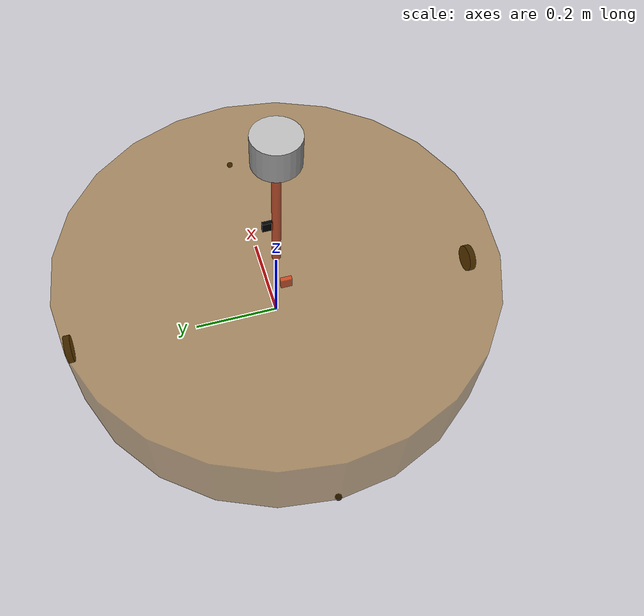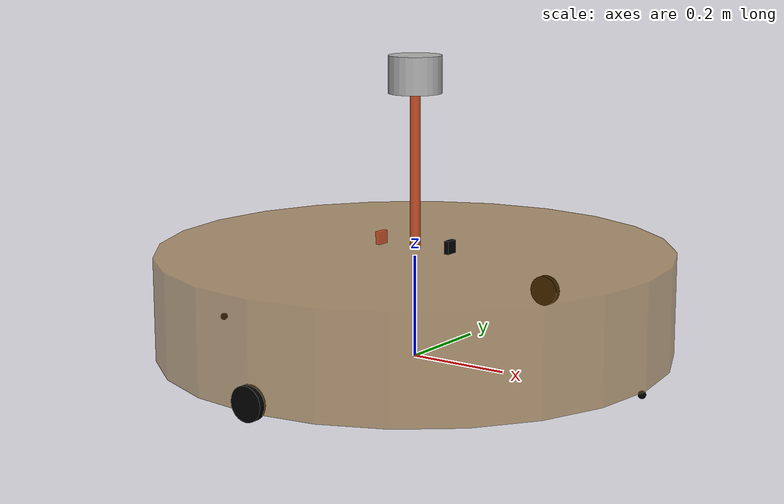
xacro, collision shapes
<!-- 组合小车底盘与传感器 -->
<robot name="robot_car" xmlns:xacro="http://wiki.ros.org/xacro">
    <!-- 属性封装 -->
    <xacro:arg name="gpu" default="true"/>
    <xacro:property name="gpu" value="$(arg gpu)" />

    <!-- 加载转动惯量描述 -->
    <xacro:include filename="$(find robot_description)/urdf/my_head.xacro" />

    <!-- 加载底盘描述 -->
    <xacro:include filename="$(find robot_description)/urdf/my_base.xacro" />
    <xacro:include filename="$(find robot_description)/urdf/move.xacro" />

    <!-- 更新结构信息，以laser_support + velodyne 为构建，不需要自己写雷达仿真的xacro文件 -->

    <!-- VLP16 激光雷达 -->
    <xacro:include filename="$(find robot_description)/urdf/laser_support.xacro" />
    <xacro:include filename="$(find velodyne_description)/urdf/VLP-16.urdf.xacro"/>
    <xacro:VLP-16 parent="support" name="velodyne" topic="/velodyne_points" hz="10" samples="440" gpu="${gpu}">
          <origin xyz="0 0 ${support_length/2}" rpy="0 0 0" />
    </xacro:VLP-16>

    <!-- IMU 模块 -->
    <xacro:include filename="$(find robot_description)/urdf/my_imu.xacro"/>
    <!-- 实例化 -->
    <xacro:imu prefix="imu"/>

    <!-- 摄像头模块 -->
    <xacro:include filename="$(find robot_description)/urdf/my_camera.xacro" />

</robot>

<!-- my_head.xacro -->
<robot name="inertia" xmlns:xacro="http://wiki.ros.org/xacro">
    <!-- Macro for inertia matrix -->
    <xacro:macro name="sphere_inertial_matrix" params="m r">
        <inertial>
            <mass value="${m}" />
            <inertia ixx="${2*m*r*r/5}" ixy="0" ixz="0"
                iyy="${2*m*r*r/5}" iyz="0"
                izz="${2*m*r*r/5}" />
        </inertial>
    </xacro:macro>

    <xacro:macro name="cylinder_inertial_matrix" params="m r h">
        <inertial>
            <mass value="${m}" />
            <inertia ixx="${m*(3*r*r+h*h)/12}" ixy = "0" ixz = "0"
                iyy="${m*(3*r*r+h*h)/12}" iyz = "0"
                izz="${m*r*r/2}" />
        </inertial>
    </xacro:macro>

    <xacro:macro name="Box_inertial_matrix" params="m l w h">
       <inertial>
               <mass value="${m}" />
               <inertia ixx="${m*(h*h + l*l)/12}" ixy = "0" ixz = "0"
                   iyy="${m*(w*w + l*l)/12}" iyz= "0"
                   izz="${m*(w*w + h*h)/12}" />
       </inertial>
   </xacro:macro>
</robot>

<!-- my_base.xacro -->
<!--
    使用 xacro 优化 URDF 版的小车底盘实现：

    实现思路:
    1.将一些常量、变量封装为 xacro:property
      比如:PI 值、小车底盘半径、离地间距、车轮半径、宽度 ....
    2.使用 宏 封装驱动轮以及支撑轮实现，调用相关宏生成驱动轮与支撑轮

-->
<!-- 根标签，必须声明 xmlns:xacro -->
<robot name="my_base" xmlns:xacro="http://www.ros.org/wiki/xacro">
    <!-- 封装变量、常量 -->
    <!-- PI 值设置精度需要高一些，否则后续车轮翻转量计算时，可能会出现肉眼不能察觉的车轮倾斜，从而导致模型抖动 -->
    <xacro:property name="PI" value="3.1415926535897932384626" />
    <!-- 宏:黑色设置 -->
    <material name="black">
        <color rgba="0.0 0.0 0.0 1.0" />
    </material>
    <!-- 底盘属性 -->
    <xacro:property name="base_footprint_radius" value="0.001" /> <!-- base_footprint 半径  -->
    <xacro:property name="base_link_radius" value="0.5" /> <!-- base_link 半径 -->
    <xacro:property name="base_link_length" value="0.2" /> <!-- base_link 长 -->
    <xacro:property name="earth_space" value="0.015" /> <!-- 离地间距 -->
    <xacro:property name="base_link_m" value="10" /> <!-- 质量  -->

    <!-- 底盘 -->
    <link name="base_footprint">
      <visual>
        <geometry>
          <sphere radius="${base_footprint_radius}" />
        </geometry>
      </visual>
    </link>

    <link name="base_link">
      <visual>
        <geometry>
          <cylinder radius="${base_link_radius}" length="${base_link_length}" />
        </geometry>
        <origin xyz="0 0 0" rpy="0 0 0" />
        <material name="yellow">
          <color rgba="0.5 0.3 0.0 0.5" />
        </material>
      </visual>
      <collision>
        <geometry>
          <cylinder radius="${base_link_radius}" length="${base_link_length}" />
        </geometry>
        <origin xyz="0 0 0" rpy="0 0 0" />
      </collision>
      <xacro:cylinder_inertial_matrix m="${base_link_m}" r="${base_link_radius}" h="${base_link_length}" />

    </link>

    <joint name="base_link2base_footprint" type="fixed">
      <parent link="base_footprint" />
      <child link="base_link" />
      <origin xyz="0 0 ${earth_space + base_link_length / 2 }" />
    </joint>
    <gazebo reference="base_link">
        <material>Gazebo/Yellow</material>
    </gazebo>

    <!-- 驱动轮 -->
    <!-- 驱动轮属性 -->
    <xacro:property name="wheel_radius" value="0.0325" /><!-- 半径 -->
    <xacro:property name="wheel_length" value="0.015" /><!-- 宽度 -->
    <xacro:property name="wheel_m" value="0.5" /> <!-- 质量  -->

    <!-- 驱动轮宏实现 -->
    <xacro:macro name="add_wheels" params="name flag">
      <link name="${name}_wheel">
        <visual>
          <geometry>
            <cylinder radius="${wheel_radius}" length="${wheel_length}" />
          </geometry>
          <origin xyz="0.0 0.0 0.0" rpy="${PI / 2} 0.0 0.0" />
          <material name="black" />
        </visual>
        <collision>
          <geometry>
            <cylinder radius="${wheel_radius}" length="${wheel_length}" />
          </geometry>
          <origin xyz="0.0 0.0 0.0" rpy="${PI / 2} 0.0 0.0" />
        </collision>
        <xacro:cylinder_inertial_matrix m="${wheel_m}" r="${wheel_radius}" h="${wheel_length}" />

      </link>

      <joint name="${name}_wheel2base_link" type="continuous">
        <parent link="base_link" />
        <child link="${name}_wheel" />
        <origin xyz="0 ${flag * base_link_radius} ${-(earth_space + base_link_length / 2 - wheel_radius) }" />
        <axis xyz="0 1 0" />
      </joint>

      <gazebo reference="${name}_wheel">
        <material>Gazebo/Red</material>
      </gazebo>

    </xacro:macro>
    <xacro:add_wheels name="left" flag="1" />
    <xacro:add_wheels name="right" flag="-1" />
    <!-- 支撑轮 -->
    <!-- 支撑轮属性 -->
    <xacro:property name="support_wheel_radius" value="0.0075" /> <!-- 支撑轮半径 -->
    <xacro:property name="support_wheel_m" value="0.5" /> <!-- 质量  -->

    <!-- 支撑轮宏 -->
    <xacro:macro name="add_support_wheel" params="name flag" >
      <link name="${name}_wheel">
        <visual>
            <geometry>
                <sphere radius="${support_wheel_radius}" />
            </geometry>
            <origin xyz="0 0 0" rpy="0 0 0" />
            <material name="black" />
        </visual>
        <collision>
            <geometry>
                <sphere radius="${support_wheel_radius}" />
            </geometry>
            <origin xyz="0 0 0" rpy="0 0 0" />
        </collision>
        <xacro:sphere_inertial_matrix m="${support_wheel_m}" r="${support_wheel_radius}" />
      </link>

      <joint name="${name}_wheel2base_link" type="continuous">
          <parent link="base_link" />
          <child link="${name}_wheel" />
          <origin xyz="${flag * (base_link_radius - support_wheel_radius)} 0 ${-(base_link_length / 2 + earth_space / 2)}" />
          <axis xyz="1 1 1" />
      </joint>
      <gazebo reference="${name}_wheel">
        <material>Gazebo/Red</material>
      </gazebo>
    </xacro:macro>

    <xacro:add_support_wheel name="front" flag="1" />
    <xacro:add_support_wheel name="back" flag="-1" />

</robot>

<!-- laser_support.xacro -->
<robot name="laser_support" xmlns:xacro="http://wiki.ros.org/xacro">
    <!-- 雷达支架 -->
    <xacro:property name="support_length" value="0.30" /> <!-- 支架长度 -->
    <xacro:property name="support_radius" value="0.01" /> <!-- 支架半径 -->
    <xacro:property name="support_x_size" value="0.0" /> <!-- 支架安装的x坐标 -->
    <xacro:property name="support_y_size" value="0.0" /> <!-- 支架安装的y坐标 -->
    <xacro:property name="support_z_size" value="${base_link_length / 2 + support_length / 2}" /> <!-- 支架安装的z坐标:底盘高度 / 2 + 支架高度 / 2  -->

    <xacro:property name="support_m" value="0.02" /> <!-- 支架质量 -->

    <link name="support">
        <visual>
            <geometry>
                <cylinder radius="${support_radius}" length="${support_length}" />
            </geometry>
            <origin xyz="0.0 0.0 0.0" rpy="0.0 0.0 0.0" />
            <material name="red">
                <color rgba="0.8 0.2 0.0 0.8" />
            </material>
        </visual>
        <collision>
            <geometry>
                <cylinder radius="${support_radius}" length="${support_length}" />
            </geometry>
            <origin xyz="0.0 0.0 0.0" rpy="0.0 0.0 0.0" />
        </collision>
        <xacro:cylinder_inertial_matrix m="${support_m}" r="${support_radius}" h="${support_length}" />
    </link>

    <joint name="support2base_link" type="fixed">
        <parent link="base_link" />
        <child link="support" />
        <origin xyz="${support_x_size} ${support_y_size} ${support_z_size}" />
    </joint>
    <gazebo reference="support">
        <material>Gazebo/White</material>
    </gazebo>
</robot>

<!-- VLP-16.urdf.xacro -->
<robot xmlns:xacro="http://www.ros.org/wiki/xacro" name="VLP-16">
  <xacro:property name="M_PI" value="3.1415926535897931" />
  <xacro:macro name="VLP-16" params="*origin is_sim:=true parent:=base_link name:=velodyne tf_prefix:='' topic:=/velodyne_points organize_cloud:=false hz:=10 lasers:=16 samples:=1875 collision_range:=0.3 min_range:=0.0 max_range:=100.0 noise:=0.008 min_angle:=-${M_PI} max_angle:=${M_PI} gpu:=false">

    <joint name="${name}_base_mount_joint" type="fixed">
      <xacro:insert_block name="origin" />
      <parent link="${parent}"/>
      <child link="${name}_base_link"/>
    </joint>

    <link name="${name}_base_link">
      <inertial>
        <mass value="0.83"/>
        <origin xyz="0 0 0.03585"/>
        <inertia ixx="${(0.83 * (3.0*0.0516*0.0516 + 0.0717*0.0717)) / 12.0}" ixy="0" ixz="0"
          iyy="${(0.83 * (3.0*0.0516*0.0516 + 0.0717*0.0717)) / 12.0}" iyz="0"
          izz="${0.5 * 0.83 * (0.0516*0.0516)}"/>
      </inertial>
      <visual>
        <geometry>
          <mesh filename="package://velodyne_description/meshes/VLP16_base_1.dae" />
        </geometry>
      </visual>
      <visual>
        <geometry>
          <mesh filename="package://velodyne_description/meshes/VLP16_base_2.dae" />
        </geometry>
      </visual>
      <collision>
        <origin rpy="0 0 0" xyz="0 0 0.03585"/>
        <geometry>
          <cylinder radius="0.0516" length="0.0717"/>
        </geometry>
      </collision>
    </link>

    <joint name="${name}_base_scan_joint" type="fixed" >
      <origin xyz="0 0 0.0377" rpy="0 0 0" />
      <parent link="${name}_base_link" />
      <child link="${name}"/>
    </joint>

    <link name="${name}">
      <inertial>
        <mass value="0.01"/>
        <origin xyz="0 0 0"/>
        <inertia ixx="1e-7" ixy="0" ixz="0" iyy="1e-7" iyz="0" izz="1e-7"/>
      </inertial>
      <visual>
        <origin xyz="0 0 -0.0377" />
        <geometry>
          <mesh filename="package://velodyne_description/meshes/VLP16_scan.dae" />
        </geometry>
      </visual>
      <collision>
        <geometry>
          <sphere radius="0"/>
        </geometry>
      </collision>
    </link>

    <!-- Gazebo requires the velodyne_gazebo_plugins package -->
    <xacro:if value="${is_sim}">
        <gazebo reference="${name}">
            <xacro:if value="${gpu}">
                <sensor type="gpu_ray" name="${name}-VLP16">
                <pose>0 0 0 0 0 0</pose>
                <visualize>false</visualize>
                <update_rate>${hz}</update_rate>
                <ray>
                    <scan>
                    <horizontal>
                        <samples>${samples}</samples>
                        <resolution>1</resolution>
                        <min_angle>${min_angle}</min_angle>
                        <max_angle>${max_angle}</max_angle>
                    </horizontal>
                    <vertical>
                        <samples>${lasers}</samples>
                        <resolution>1</resolution>
                        <min_angle>-${15.0*M_PI/180.0}</min_angle>
                        <max_angle> ${15.0*M_PI/180.0}</max_angle>
                    </vertical>
                    </scan>
                    <range>
                    <min>${collision_range}</min>
                    <max>${max_range+1}</max>
                    <resolution>0.001</resolution>
                    </range>
                    <noise>
                    <type>gaussian</type>
                    <mean>0.0</mean>
                    <stddev>0.0</stddev>
                    </noise>
                </ray>
                <plugin name="gazebo_ros_laser_controller" filename="libgazebo_ros_velodyne_laser.so">
                    <ros>
                    <namespace>/${name}</namespace>
                    <remapping>~/out:=${topic}</remapping>
                    </ros>
                    <tf_prefix>${tf_prefix}</tf_prefix>
                    <frame_name>${name}</frame_name>
                    <organize_cloud>${organize_cloud}</organize_cloud>
                    <min_range>${min_range}</min_range>
                    <max_range>${max_range}</max_range>
                    <gaussian_noise>${noise}</gaussian_noise>
                </plugin>
                </sensor>
            </xacro:if>
            <xacro:unless value="${gpu}">
                <sensor type="ray" name="${name}-VLP16">
                <pose>0 0 0 0 0 0</pose>
                <visualize>false</visualize>
                <update_rate>${hz}</update_rate>
                <ray>
                    <scan>
                    <horizontal>
                        <samples>${samples}</samples>
                        <resolution>1</resolution>
                        <min_angle>${min_angle}</min_angle>
                        <max_angle>${max_angle}</max_angle>
                    </horizontal>
                    <vertical>
                        <samples>${lasers}</samples>
                        <resolution>1</resolution>
                        <min_angle>-${15.0*M_PI/180.0}</min_angle>
                        <max_angle> ${15.0*M_PI/180.0}</max_angle>
                    </vertical>
                    </scan>
                    <range>
                    <min>${collision_range}</min>
                    <max>${max_range+1}</max>
                    <resolution>0.001</resolution>
                    </range>
                    <noise>
                    <type>gaussian</type>
                    <mean>0.0</mean>
                    <stddev>0.0</stddev>
                    </noise>
                </ray>
                <plugin name="gazebo_ros_laser_controller" filename="libgazebo_ros_velodyne_laser.so">
                    <ros>
                    <namespace>/${name}</namespace>
                    <remapping>~/out:=${topic}</remapping>
                    </ros>
                    <tf_prefix>${tf_prefix}</tf_prefix>
                    <frame_name>${name}</frame_name>
                    <organize_cloud>${organize_cloud}</organize_cloud>
                    <min_range>${min_range}</min_range>
                    <max_range>${max_range}</max_range>
                    <gaussian_noise>${noise}</gaussian_noise>
                </plugin>
                </sensor>
            </xacro:unless>
        </gazebo>
    </xacro:if>

  </xacro:macro>
</robot>

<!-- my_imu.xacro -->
<robot xmlns:xacro="http://www.ros.org/wiki/xacro" name="imu">

    <!-- IMU 属性 -->
    <xacro:property name="imu_length"   value="0.01" /> <!-- IMU长度(x) -->
    <xacro:property name="imu_width"    value="0.025" /> <!-- IMU宽度(y) -->
    <xacro:property name="imu_height"   value="0.025" /> <!-- IMU高度(z) -->
    <xacro:property name="imu_x"        value="-0.08" />
    <xacro:property name="imu_y"        value="0.0" />
    <xacro:property name="imu_z"        value="${base_link_length / 2 + imu_height / 2}" />

    <xacro:property name="imu_m" value="0.01" /> <!-- IMU质量 -->

    <!-- 默认惯性参数 -->
    <xacro:macro name="default_inertial" params="mass">
        <inertial>
            <mass value="${mass}" />
            <inertia ixx="1.0" ixy="0.0" ixz="0.0" iyy="1.0" iyz="0.0" izz="1.0" />
        </inertial>
    </xacro:macro>

    <!-- IMU 传感器宏 -->
    <xacro:macro name="imu" params="prefix:=imu">

        <!-- IMU 链接 -->
        <link name="imu_link">
            <visual>
                <geometry>
                    <box size="${imu_length} ${imu_width} ${imu_height}"/>
                </geometry>
                <origin rpy="0 0 0" xyz="0 0 0" />
                <material name="red"/>
            </visual>
            <collision>
                <geometry>
                    <box size="${imu_length} ${imu_width} ${imu_height}"/>
                </geometry>
                <origin rpy="0 0 0" xyz="0 0 0" />
            </collision>
            <xacro:Box_inertial_matrix m="${imu_m}" l="${imu_length}" w="${imu_width}" h="${imu_height}" />
        </link>

        <!-- 关节连接 imu_link 和 base_link -->
        <joint name="imu_to_base" type="fixed">
            <parent link="base_link"/>
            <child link="imu_link"/>
            <origin rpy="0 0 0" xyz="${imu_x} ${imu_y} ${imu_z}"/>
        </joint>

        <!-- Gazebo 配置 -->
        <gazebo reference="${prefix}_link">
            <gravity>true</gravity>
            <sensor name="imu_sensor" type="imu">
                <always_on>true</always_on>
                <update_rate>100</update_rate>
                <visualize>true</visualize>
                <topic>__default_topic__</topic>
                <plugin filename="libgazebo_ros_imu_sensor.so" name="imu_plugin">
                    <topicName>imu</topicName>
                    <bodyName>imu_link</bodyName>
                    <updateRateHZ>100.0</updateRateHZ>
                    <gaussianNoise>0.0</gaussianNoise>
                    <xyzOffset>0 0 0</xyzOffset>
                    <rpyOffset>0 0 0</rpyOffset>
                    <frameName>imu_link</frameName>
                </plugin>
                <pose>0 0 0 0 0 0</pose>
            </sensor>
        </gazebo>

    </xacro:macro>

</robot>

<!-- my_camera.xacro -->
<robot name="my_camera" xmlns:xacro="http://www.ros.org/wiki/xacro">
    <!-- 摄像头属性 -->
    <xacro:property name="camera_length"    value="0.01" /> <!-- 摄像头长度(x) -->
    <xacro:property name="camera_width"     value="0.025" /> <!-- 摄像头宽度(y) -->
    <xacro:property name="camera_height"    value="0.025" /> <!-- 摄像头高度(z) -->
    <xacro:property name="camera_x"         value="0.08" /> <!-- 摄像头安装的x坐标 -->
    <xacro:property name="camera_y"         value="0.0" /> <!-- 摄像头安装的y坐标 -->
    <xacro:property name="camera_z"         value="${base_link_length / 2 + camera_height / 2}" /> <!-- 摄像头安装的z坐标:底盘高度 / 2 + 摄像头高度 / 2  -->

    <xacro:property name="camera_m" value="0.01" /> <!-- 摄像头质量 -->

    <!-- 摄像头关节以及link -->
    <link name="camera">
        <visual>
            <geometry>
                <box size="${camera_length} ${camera_width} ${camera_height}" />
            </geometry>
            <origin xyz="0.0 0.0 0.0" rpy="0.0 0.0 0.0" />
            <material name="black" />
        </visual>
        <collision>
            <geometry>
                <box size="${camera_length} ${camera_width} ${camera_height}" />
            </geometry>
            <origin xyz="0.0 0.0 0.0" rpy="0.0 0.0 0.0" />
        </collision>
        <xacro:Box_inertial_matrix m="${camera_m}" l="${camera_length}" w="${camera_width}" h="${camera_height}" />
    </link>

    <joint name="camera2base_link" type="fixed">
        <parent link="base_link" />
        <child link="camera" />
        <origin xyz="${camera_x} ${camera_y} ${camera_z}" />
    </joint>

    <!-- Gazebo 配置 -->
    <gazebo reference="camera">
        <!-- 摄像头传感器 -->
        <sensor type="camera" name="camera_node">
            <update_rate>30.0</update_rate> <!-- 更新频率 -->
            <camera name="head">
                <horizontal_fov>1.3962634</horizontal_fov> <!-- 水平视场角 (80°) -->
                <image>
                    <width>1280</width>
                    <height>720</height>
                    <format>R8G8B8</format>
                </image>
                <clip>
                    <near>0.02</near>
                    <far>300</far>
                </clip>
                <noise>
                    <type>gaussian</type>
                    <mean>0.0</mean>
                    <stddev>0.007</stddev>
                </noise>
            </camera>
            <!-- 核心插件 -->
            <plugin name="gazebo_camera" filename="libgazebo_ros_camera.so">
                <alwaysOn>true</alwaysOn>
                <updateRate>0.0</updateRate>
                <cameraName>/camera</cameraName>
                <imageTopicName>image_raw</imageTopicName>
                <cameraInfoTopicName>camera_info</cameraInfoTopicName>
                <frameName>camera</frameName>
                <hackBaseline>0.07</hackBaseline>
                <distortionK1>0.0</distortionK1>
                <distortionK2>0.0</distortionK2>
                <distortionK3>0.0</distortionK3>
                <distortionT1>0.0</distortionT1>
                <distortionT2>0.0</distortionT2>
            </plugin>
        </sensor>
    </gazebo>
</robot>
